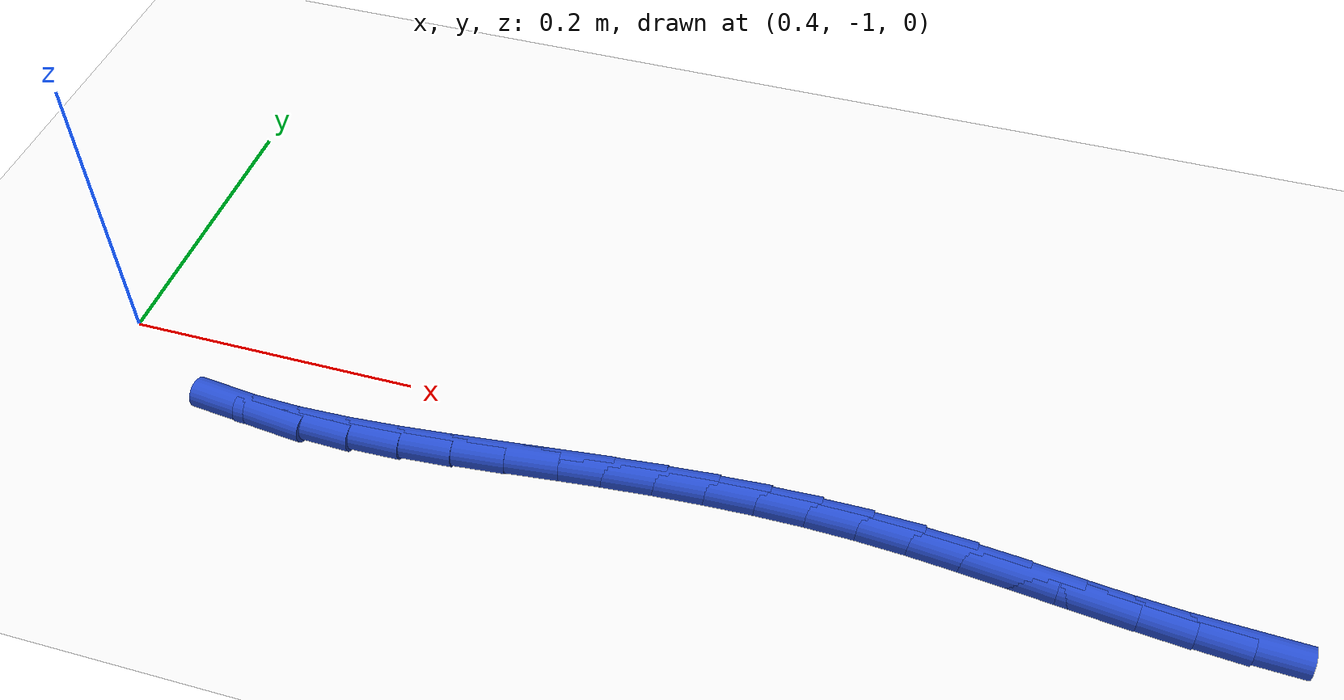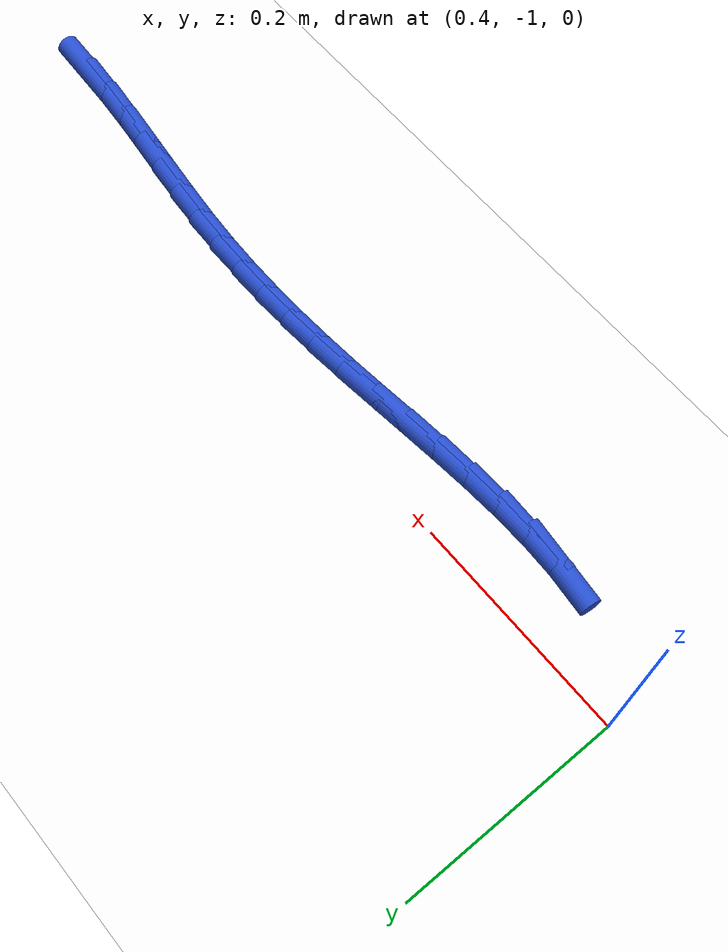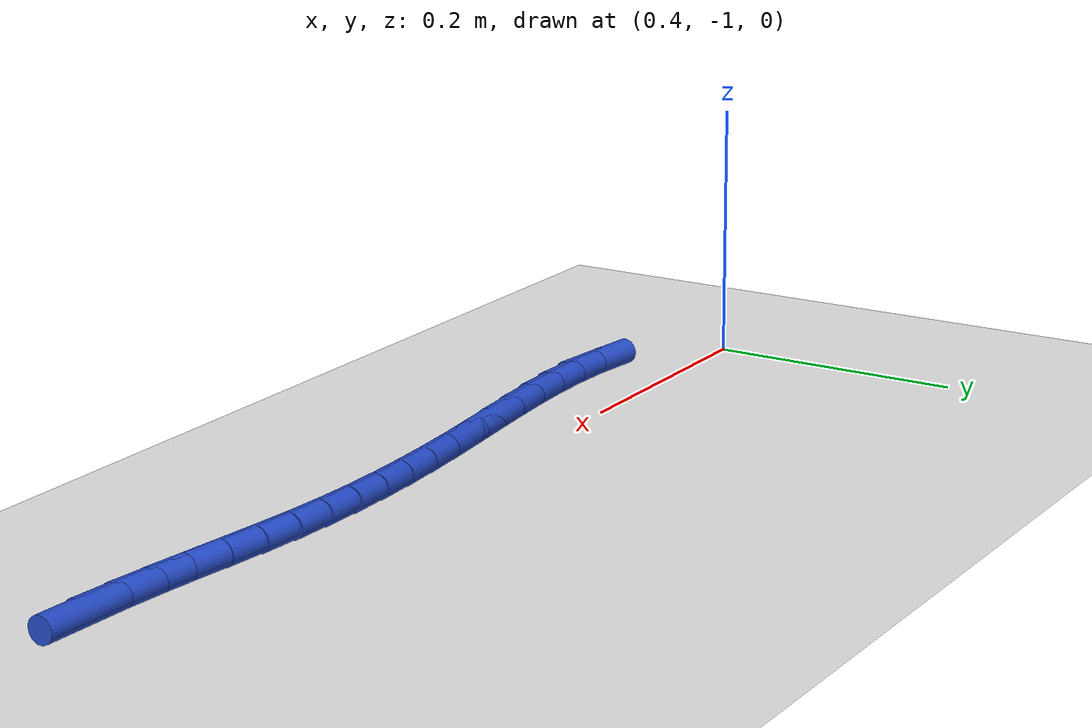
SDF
<sdf version="1.6">
 <world name="default">
  <model name="ground_plane">
   <static>1</static>
   <link name="link">
    <collision name="collision">
     <geometry><plane><normal>0 0 1</normal><size>100 100</size></plane></geometry>
     <surface><friction><ode><mu>100</mu><mu2>50</mu2></ode></friction></surface>
    </collision>
    <visual name="visual">
     <cast_shadows>0</cast_shadows>
     <geometry><plane><normal>0 0 1</normal><size>100 100</size></plane></geometry>
     <material>
      <script><uri>file://media/materials/scripts/gazebo.material</uri><name>Gazebo/WhiteGlow</name></script>
     </material>
    </visual>
   </link>
  </model>
  <model name="line">
   <link name="link_183">
    <pose>1.1353034969730385 -1.0544516379774482 0.01 0 1.57 -0.045708935829884494</pose>
    <collision name="collision">
     <geometry><cylinder><radius>0.01</radius><length>0.08</length></cylinder></geometry>
    </collision>
    <visual name="visual">
     <material>
      <script><name>Gazebo/Blue</name><uri>file://media/materials/scripts/gazebo.material</uri></script>
     </material>
     <geometry><cylinder><radius>0.01</radius><length>0.08</length></cylinder></geometry>
    </visual>
   </link>
   <link name="link_184">
    <pose>1.1027676366750352 -1.0529634218358155 0.01 0 1.57 -0.0827599442027431</pose>
    <collision name="collision">
     <geometry><cylinder><radius>0.01</radius><length>0.08</length></cylinder></geometry>
    </collision>
    <visual name="visual">
     <material>
      <script><name>Gazebo/Blue</name><uri>file://media/materials/scripts/gazebo.material</uri></script>
     </material>
     <geometry><cylinder><radius>0.01</radius><length>0.08</length></cylinder></geometry>
    </visual>
   </link>
   <link name="link_185">
    <pose>1.0701752218534417 -1.0502599002559982 0.01 0 1.57 -0.10614150775043302</pose>
    <collision name="collision">
     <geometry><cylinder><radius>0.01</radius><length>0.08</length></cylinder></geometry>
    </collision>
    <visual name="visual">
     <material>
      <script><name>Gazebo/Blue</name><uri>file://media/materials/scripts/gazebo.material</uri></script>
     </material>
     <geometry><cylinder><radius>0.01</radius><length>0.08</length></cylinder></geometry>
    </visual>
   </link>
   <link name="link_186">
    <pose>1.0375803463676379 -1.0467871799766255 0.01 0 1.57 -0.11611436204334649</pose>
    <collision name="collision">
     <geometry><cylinder><radius>0.01</radius><length>0.08</length></cylinder></geometry>
    </collision>
    <visual name="visual">
     <material>
      <script><name>Gazebo/Blue</name><uri>file://media/materials/scripts/gazebo.material</uri></script>
     </material>
     <geometry><cylinder><radius>0.01</radius><length>0.08</length></cylinder></geometry>
    </visual>
   </link>
   <link name="link_187">
    <pose>1.0050371040770016 -1.0429913677363265 0.01 0 1.57 -0.1127466637515483</pose>
    <collision name="collision">
     <geometry><cylinder><radius>0.01</radius><length>0.08</length></cylinder></geometry>
    </collision>
    <visual name="visual">
     <material>
      <script><name>Gazebo/Blue</name><uri>file://media/materials/scripts/gazebo.material</uri></script>
     </material>
     <geometry><cylinder><radius>0.01</radius><length>0.08</length></cylinder></geometry>
    </visual>
   </link>
   <link name="link_188">
    <pose>0.9725995888409112 -1.0393185702737295 0.01 0 1.57 -0.09586072778334952</pose>
    <collision name="collision">
     <geometry><cylinder><radius>0.01</radius><length>0.08</length></cylinder></geometry>
    </collision>
    <visual name="visual">
     <material>
      <script><name>Gazebo/Blue</name><uri>file://media/materials/scripts/gazebo.material</uri></script>
     </material>
     <geometry><cylinder><radius>0.01</radius><length>0.08</length></cylinder></geometry>
    </visual>
   </link>
   <link name="link_189">
    <pose>0.9403218945187451 -1.0362148943274634 0.01 0 1.57 -0.06538753248901659</pose>
    <collision name="collision">
     <geometry><cylinder><radius>0.01</radius><length>0.08</length></cylinder></geometry>
    </collision>
    <visual name="visual">
     <material>
      <script><name>Gazebo/Blue</name><uri>file://media/materials/scripts/gazebo.material</uri></script>
     </material>
     <geometry><cylinder><radius>0.01</radius><length>0.08</length></cylinder></geometry>
    </visual>
   </link>
   <link name="link_190">
    <pose>0.9082539407711906 -1.0341150564670776 0.01 0 1.57 -0.02902793203322884</pose>
    <collision name="collision">
     <geometry><cylinder><radius>0.01</radius><length>0.08</length></cylinder></geometry>
    </collision>
    <visual name="visual">
     <material>
      <script><name>Gazebo/Blue</name><uri>file://media/materials/scripts/gazebo.material</uri></script>
     </material>
     <geometry><cylinder><radius>0.01</radius><length>0.08</length></cylinder></geometry>
    </visual>
   </link>
   <link name="link_191">
    <pose>0.8763484853746323 -1.0331886468577052 0.01 0 1.57 0.004695118935891978</pose>
    <collision name="collision">
     <geometry><cylinder><radius>0.01</radius><length>0.08</length></cylinder></geometry>
    </collision>
    <visual name="visual">
     <material>
      <script><name>Gazebo/Blue</name><uri>file://media/materials/scripts/gazebo.material</uri></script>
     </material>
     <geometry><cylinder><radius>0.01</radius><length>0.08</length></cylinder></geometry>
    </visual>
   </link>
   <link name="link_192">
    <pose>0.8444604780123715 -1.0333383659450441 0.01 0 1.57 0.03486433122887757</pose>
    <collision name="collision">
     <geometry><cylinder><radius>0.01</radius><length>0.08</length></cylinder></geometry>
    </collision>
    <visual name="visual">
     <material>
      <script><name>Gazebo/Blue</name><uri>file://media/materials/scripts/gazebo.material</uri></script>
     </material>
     <geometry><cylinder><radius>0.01</radius><length>0.08</length></cylinder></geometry>
    </visual>
   </link>
   <link name="link_193">
    <pose>0.8124405649254864 -1.034455171337854 0.01 0 1.57 0.061062618993748735</pose>
    <collision name="collision">
     <geometry><cylinder><radius>0.01</radius><length>0.08</length></cylinder></geometry>
    </collision>
    <visual name="visual">
     <material>
      <script><name>Gazebo/Blue</name><uri>file://media/materials/scripts/gazebo.material</uri></script>
     </material>
     <geometry><cylinder><radius>0.01</radius><length>0.08</length></cylinder></geometry>
    </visual>
   </link>
   <link name="link_194">
    <pose>0.7801393923550525 -1.0364300206448918 0.01 0 1.57 0.0830259973905754</pose>
    <collision name="collision">
     <geometry><cylinder><radius>0.01</radius><length>0.08</length></cylinder></geometry>
    </collision>
    <visual name="visual">
     <material>
      <script><name>Gazebo/Blue</name><uri>file://media/materials/scripts/gazebo.material</uri></script>
     </material>
     <geometry><cylinder><radius>0.01</radius><length>0.08</length></cylinder></geometry>
    </visual>
   </link>
   <link name="link_195">
    <pose>0.7474076065421457 -1.0391538714749162 0.01 0 1.57 0.10053199367327406</pose>
    <collision name="collision">
     <geometry><cylinder><radius>0.01</radius><length>0.08</length></cylinder></geometry>
    </collision>
    <visual name="visual">
     <material>
      <script><name>Gazebo/Blue</name><uri>file://media/materials/scripts/gazebo.material</uri></script>
     </material>
     <geometry><cylinder><radius>0.01</radius><length>0.08</length></cylinder></geometry>
    </visual>
   </link>
   <link name="link_196">
    <pose>0.7141013847860108 -1.0425135383444852 0.01 0 1.57 0.11004572940801832</pose>
    <collision name="collision">
     <geometry><cylinder><radius>0.01</radius><length>0.08</length></cylinder></geometry>
    </collision>
    <visual name="visual">
     <material>
      <script><name>Gazebo/Blue</name><uri>file://media/materials/scripts/gazebo.material</uri></script>
     </material>
     <geometry><cylinder><radius>0.01</radius><length>0.08</length></cylinder></geometry>
    </visual>
   </link>
   <link name="link_197">
    <pose>0.6802693049199295 -1.04625171630373 0.01 0 1.57 0.10763138876150702</pose>
    <collision name="collision">
     <geometry><cylinder><radius>0.01</radius><length>0.08</length></cylinder></geometry>
    </collision>
    <visual name="visual">
     <material>
      <script><name>Gazebo/Blue</name><uri>file://media/materials/scripts/gazebo.material</uri></script>
     </material>
     <geometry><cylinder><radius>0.01</radius><length>0.08</length></cylinder></geometry>
    </visual>
   </link>
   <link name="link_198">
    <pose>0.646197528977742 -1.0499331356773358 0.01 0 1.57 0.09318207837829284</pose>
    <collision name="collision">
     <geometry><cylinder><radius>0.01</radius><length>0.08</length></cylinder></geometry>
    </collision>
    <visual name="visual">
     <material>
      <script><name>Gazebo/Blue</name><uri>file://media/materials/scripts/gazebo.material</uri></script>
     </material>
     <geometry><cylinder><radius>0.01</radius><length>0.08</length></cylinder></geometry>
    </visual>
   </link>
   <link name="link_199">
    <pose>0.6121869130228926 -1.0531115200860985 0.01 0 1.57 0.0661489892271185</pose>
    <collision name="collision">
     <geometry><cylinder><radius>0.01</radius><length>0.08</length></cylinder></geometry>
    </collision>
    <visual name="visual">
     <material>
      <script><name>Gazebo/Blue</name><uri>file://media/materials/scripts/gazebo.material</uri></script>
     </material>
     <geometry><cylinder><radius>0.01</radius><length>0.08</length></cylinder></geometry>
    </visual>
   </link>
   <link name="link_200">
    <pose>0.5785383131188255 -1.0553405931508142 0.01 0 1.57 0.025262684159131802</pose>
    <collision name="collision">
     <geometry><cylinder><radius>0.01</radius><length>0.08</length></cylinder></geometry>
    </collision>
    <visual name="visual">
     <material>
      <script><name>Gazebo/Blue</name><uri>file://media/materials/scripts/gazebo.material</uri></script>
     </material>
     <geometry><cylinder><radius>0.01</radius><length>0.08</length></cylinder></geometry>
    </visual>
   </link>
   <link name="link_201">
    <pose>0.5455525853289875 -1.0561740784922795 0.01 0 1.57 -0.031479784456370875</pose>
    <collision name="collision">
     <geometry><cylinder><radius>0.01</radius><length>0.08</length></cylinder></geometry>
    </collision>
    <visual name="visual">
     <material>
      <script><name>Gazebo/Blue</name><uri>file://media/materials/scripts/gazebo.material</uri></script>
     </material>
     <geometry><cylinder><radius>0.01</radius><length>0.08</length></cylinder></geometry>
    </visual>
   </link>
   <link name="link_202">
    <pose>0.5135305857168222 -1.0551656997312895 0.01 0 1.57 -0.1067704479663084</pose>
    <collision name="collision">
     <geometry><cylinder><radius>0.01</radius><length>0.08</length></cylinder></geometry>
    </collision>
    <visual name="visual">
     <material>
      <script><name>Gazebo/Blue</name><uri>file://media/materials/scripts/gazebo.material</uri></script>
     </material>
     <geometry><cylinder><radius>0.01</radius><length>0.08</length></cylinder></geometry>
    </visual>
   </link>
  </model>
 </world>
</sdf>
